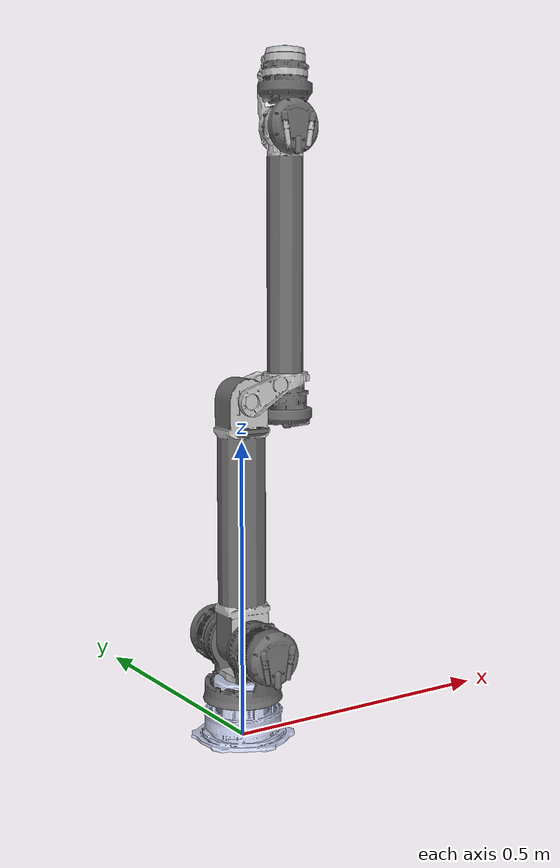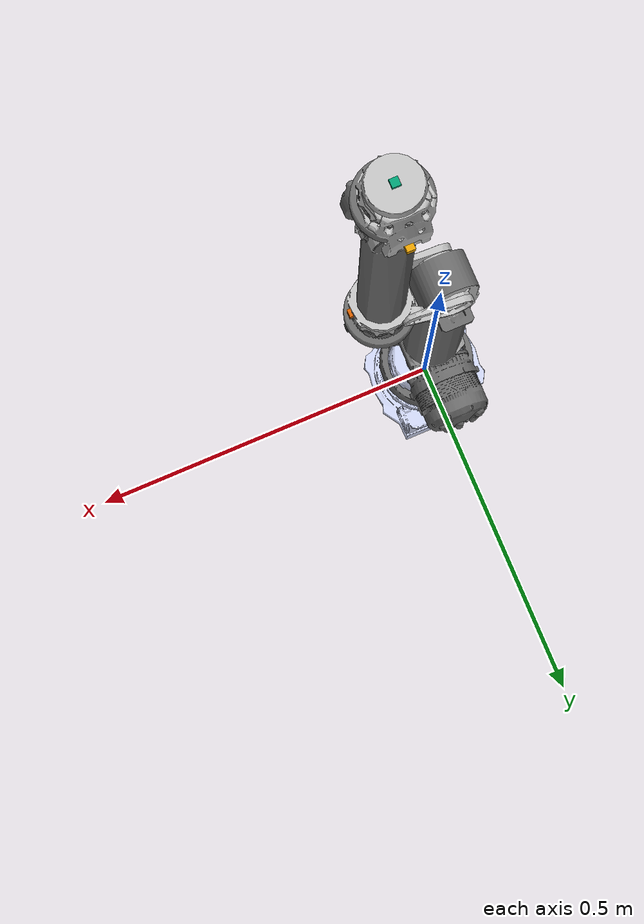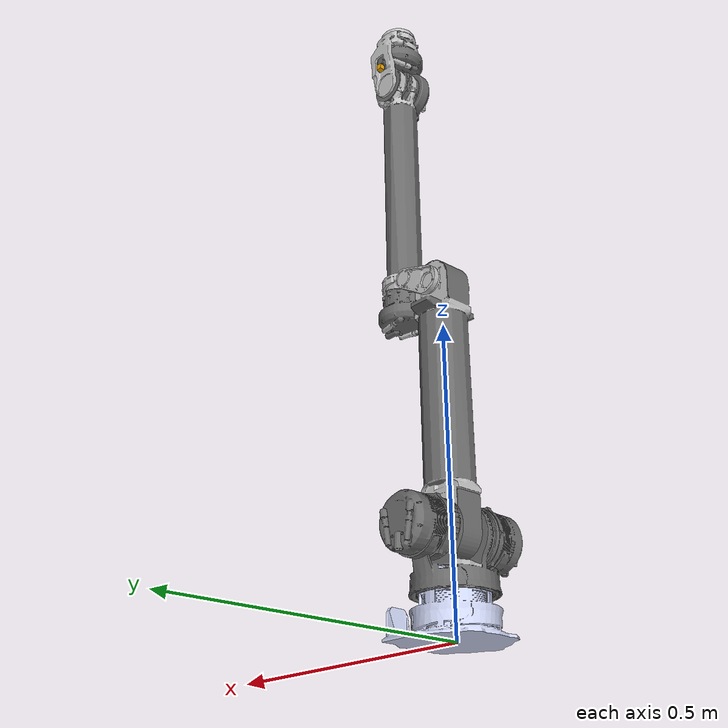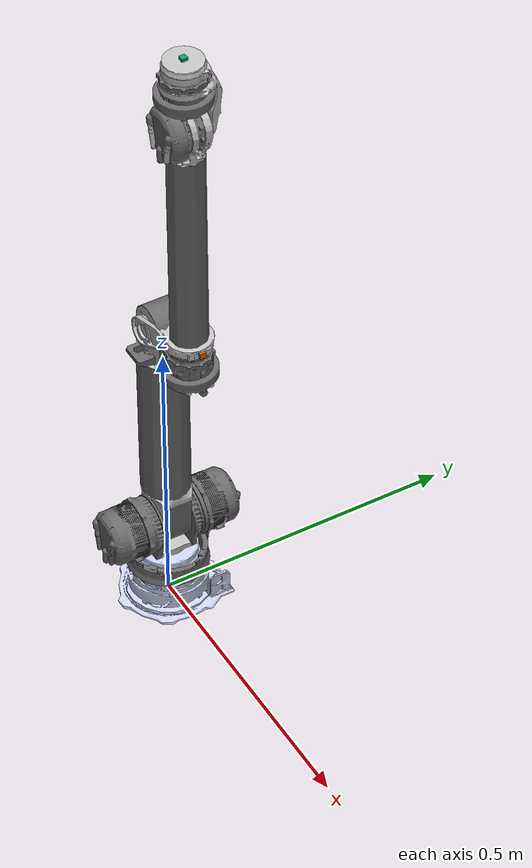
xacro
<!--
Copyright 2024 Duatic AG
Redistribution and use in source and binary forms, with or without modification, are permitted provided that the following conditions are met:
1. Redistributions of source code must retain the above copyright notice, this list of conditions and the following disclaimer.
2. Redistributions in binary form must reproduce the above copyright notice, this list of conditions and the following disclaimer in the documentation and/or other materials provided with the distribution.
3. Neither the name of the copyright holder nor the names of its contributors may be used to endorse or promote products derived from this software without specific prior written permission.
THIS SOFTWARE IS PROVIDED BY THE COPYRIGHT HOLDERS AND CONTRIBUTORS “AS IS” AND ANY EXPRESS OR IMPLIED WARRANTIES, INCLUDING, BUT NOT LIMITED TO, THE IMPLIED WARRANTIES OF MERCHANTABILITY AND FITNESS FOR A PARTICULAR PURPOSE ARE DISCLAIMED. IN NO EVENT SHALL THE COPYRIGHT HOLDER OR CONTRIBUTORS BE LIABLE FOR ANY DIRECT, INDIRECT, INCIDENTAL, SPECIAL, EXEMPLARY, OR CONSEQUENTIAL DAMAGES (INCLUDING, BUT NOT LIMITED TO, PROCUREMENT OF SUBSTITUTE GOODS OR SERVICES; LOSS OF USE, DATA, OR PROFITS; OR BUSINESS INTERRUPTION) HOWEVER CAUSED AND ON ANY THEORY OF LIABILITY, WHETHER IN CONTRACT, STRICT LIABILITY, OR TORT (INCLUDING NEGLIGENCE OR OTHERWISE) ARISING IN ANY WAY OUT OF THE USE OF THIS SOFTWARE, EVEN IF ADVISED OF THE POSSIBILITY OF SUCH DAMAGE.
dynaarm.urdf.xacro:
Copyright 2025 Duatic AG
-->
<robot name="dynaarm" xmlns:xacro="http://www.ros.org/wiki/xacro">

  <!--Example single arm setup-->
  <xacro:arg name="namespace" default="" />
  <xacro:arg name="tf_prefix" default="" />
  <xacro:arg name="dof" default="6" />
  <!-- collision: simple, complex -->
  <xacro:arg name="collision" default="simple" />
  <!-- real, mock, sim -->
  <xacro:arg name="mode" default="mock" />
  <!-- physical ethercat bus, only used for real -->
  <xacro:arg name="ethercat_bus" default="eth0" />
  <!-- Change to add covers to the arm -->
  <xacro:arg name="covers" default="false" />
  <xacro:arg name="version" default="baracuda12" />
  <!-- Path to ros2_control controller config file -->
  <xacro:arg name="controller_path" default="" />

  <xacro:include filename="$(find dynaarm_description)/urdf/dynaarm.urdf.xacro" />

  <link name="base_link" />

  <!-- create an instance of the dynaarm xacro macro and fix its base, move it up such that it doesn't intersect with the ground -->
  <xacro:dynaarm tf_prefix="$(arg tf_prefix)"
                parent_link="base_link"
                dof="$(arg dof)"
                collision="$(arg collision)"
                mode="$(arg mode)"
                ethercat_bus="$(arg ethercat_bus)"
                covers="$(arg covers)"
                version="$(arg version)">
    <origin xyz="0 0 0" rpy="0.0 0.0 0.0" />
  </xacro:dynaarm>

  <!-- Gazebo Ros2 Control -->
  <xacro:include filename="$(find duatic_control)/urdf/plugins.urdf.xacro" />
  <xacro:control namespace="$(arg namespace)">
    <remapping>cmd_vel:=cmd_vel</remapping> <!-- TODO: This line only exists, because otherwise the xacro doesn't compile -->
  </xacro:control>

</robot>

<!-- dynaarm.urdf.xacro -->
<robot name="dynaarm" xmlns:xacro="http://www.ros.org/wiki/xacro">

  <!-- DynaArm Macro-->

  <xacro:macro name="dynaarm"
    params="tf_prefix parent_link collision:='simple' dof mode ethercat_bus drive_order:='' start_in_freeze_mode:=false drive_parameter_folder:='' covers version *origin">

    <!-- Allow the user to pass the drive order file -->
    <xacro:property name="default_drive_order_file" value="$(find dynaarm_description)/urdf/common/${version}/drive_order.yaml" />
    <xacro:property name="drive_order_file" value="${default_drive_order_file if drive_order == '' else drive_order}" />
    <!-- Obtain the EtherCAT drive order (address order list) -->
    <xacro:property name="ethercat_addresses" value="${xacro.load_yaml(drive_order_file)}"/>

    <!--Allow the user to pass a custom folder for drive parameters-->
    <xacro:property name="default_drive_parameter_folder" value="$(find dynaarm_driver)/config/${version}" />
    <xacro:if value="${drive_parameter_folder == ''}">
      <xacro:property name="drive_parameter_folder_internal" value="${default_drive_parameter_folder}" />
    </xacro:if>
    <xacro:unless value="${drive_parameter_folder == ''}">
      <xacro:property name="drive_parameter_folder_internal" value="${drive_parameter_folder}" />
    </xacro:unless>
    <!-- Set ee_parent based on the specified DoF -->
    <xacro:property name="ee_parent" value="${base}" />

    <xacro:include filename="$(find dynaarm_description)/urdf/common/dynaarm_common.urdf.xacro" />
    <!-- Include the version specific information and also load the ethercat addresses from the drive file -->
    <xacro:include filename="$(find dynaarm_description)/urdf/common/${version}/dynaarm_parameters.urdf.xacro" />
    <xacro:include filename="$(find dynaarm_description)/urdf/common/dynaarm.ros2control.xacro" />

    <xacro:dynaarm_joint_fixed joint_name="${joint_base_name}"
      parent="${parent_link}"
      child="${base}">
      <xacro:insert_block name="origin" />
    </xacro:dynaarm_joint_fixed>

    <!-- DynaArm-->
    <xacro:dynaarm_main_body />
    <xacro:dynaarm_tool />

    <!--ros2control-->
    <xacro:dynaarm_ros2_control tf_prefix="${tf_prefix}"
                                ethercat_bus="${ethercat_bus}"
                                start_in_freeze_mode="${start_in_freeze_mode}"
                                drive_parameter_folder="${drive_parameter_folder_internal}"
                                drive_parameter_folder_default="${default_drive_parameter_folder}"
                                ethercat_addresses="${ethercat_addresses}"
                                mode="${mode}"/>
  </xacro:macro>

  <!-- DynaArm Main Body-->
  <xacro:macro name="dynaarm_main_body">

    <!-- dynaarm_base -->
    <xacro:dynaarm_baselink link_name="${base}" file_name="${base_mesh}">
      <base_inertia>
        <xacro:insert_block name="base_inertial" />
      </base_inertia>
      <base_collision>
        <xacro:insert_block name="base_collision" />
      </base_collision>
    </xacro:dynaarm_baselink>

    <!-- Base Covers-->
    <xacro:if value="${covers}">
      <xacro:dynaarm_link link_name="${base}_cover" file_name="${base_cover_mesh}">
        <link_inertia>
          <xacro:insert_block name="base_cover_inertial" />
        </link_inertia>
      </xacro:dynaarm_link>

      <xacro:dynaarm_joint_fixed joint_name="${base}_cover"
        parent="${base}"
        child="${base}_cover">
        <origin xyz="0.0 0.0 0.0" rpy="0.0 0.0 0.0" />
      </xacro:dynaarm_joint_fixed>
    </xacro:if>

    <!-- 1 DoF -->
    <xacro:if value="${dof >= 1}">

      <!-- dynaarm_SHOULDER -->
      <xacro:dynaarm_link_w_collision link_name="${link01}" file_name="${link01_mesh}">
        <link_inertia>
          <xacro:insert_block name="link01_inertial" />
        </link_inertia>
        <link_collision>
          <xacro:insert_block name="link01_collision" />
        </link_collision>
      </xacro:dynaarm_link_w_collision>

      <!-- shoulder_rotation -->
      <xacro:dynaarm_revolute_joint joint_name="${joint_1_name}"
        parent="${base}"
        child="${link01}"
        joint_axis_xyz="${joint_1_axis_xyz}"
        joint_lower_limit="${joint_1_lower_limit}"
        joint_upper_limit="${joint_1_upper_limit}"
        joint_limit_vel="${baboon_max_speed}"
        joint_limit_effort="${baboon_peak_torque}"
        joint_type="${joint_1_joint_type}">
        <origin xyz="${joint_1_origin_xyz}" rpy="${joint_1_origin_rpy}" />
      </xacro:dynaarm_revolute_joint>

      <!-- 1 Dof & Covers-->
      <xacro:if value="${covers}">
        <xacro:dynaarm_link link_name="${link01}_cover" file_name="${link01_cover_mesh}">
          <link_inertia>
            <xacro:insert_block name="link01_cover_inertial" />
          </link_inertia>
        </xacro:dynaarm_link>

        <xacro:dynaarm_joint_fixed joint_name="${link01}_cover" parent="${link01}"
          child="${link01}_cover">
          <origin xyz="0.0 0.0 0.0" rpy="0.0 0.0 0.0" />
        </xacro:dynaarm_joint_fixed>
      </xacro:if>

    </xacro:if>

    <!-- 2 DoF -->
    <xacro:if value="${dof >= 2}">

      <!-- dynaarm_UPPERARM -->
      <xacro:dynaarm_link_w_collision link_name="${link02}" file_name="${link02_mesh}">
        <link_inertia>
          <xacro:insert_block name="link02_inertial" />
        </link_inertia>
        <link_collision>
          <xacro:insert_block name="link02_collision" />
        </link_collision>
      </xacro:dynaarm_link_w_collision>

      <!-- shoulder_flexion -->
      <xacro:dynaarm_revolute_joint joint_name="${joint_2_name}"
        parent="${link01}"
        child="${link02}"
        joint_axis_xyz="${joint_2_axis_xyz}"
        joint_lower_limit="${joint_2_lower_limit}"
        joint_upper_limit="${joint_2_upper_limit}"
        joint_limit_vel="${baboon_max_speed}"
        joint_limit_effort="${baboon_peak_torque}"
        joint_type="${joint_2_joint_type}">
        <origin xyz="${joint_2_origin_xyz}" rpy="${joint_2_origin_rpy}" />
      </xacro:dynaarm_revolute_joint>

      <!-- 2 Dof & Covers-->
      <xacro:if value="${covers}">
        <xacro:dynaarm_link link_name="${link02}_cover" file_name="${link02_cover_mesh}">
          <link_inertia>
            <xacro:insert_block name="link02_cover_inertial" />
          </link_inertia>
        </xacro:dynaarm_link>

        <xacro:dynaarm_joint_fixed joint_name="${link02}_cover" parent="${link02}"
          child="${link02}_cover">
          <origin xyz="0.0 0.0 0.0" rpy="0.0 0.0 0.0" />
        </xacro:dynaarm_joint_fixed>
      </xacro:if>
    </xacro:if>

    <!-- 3 DoF -->
    <xacro:if value="${dof >= 3}">

      <!-- dynaarm_ELBOW -->
      <xacro:dynaarm_link_w_collision link_name="${link03}" file_name="${link03_mesh}">
        <link_inertia>
          <xacro:insert_block name="link03_inertial" />
        </link_inertia>
        <link_collision>
          <xacro:insert_block name="link03_collision" />
        </link_collision>
      </xacro:dynaarm_link_w_collision>

      <!-- elbow_flexion -->
      <xacro:dynaarm_revolute_joint joint_name="${joint_3_name}"
        parent="${link02}"
        child="${link03}"
        joint_axis_xyz="${joint_3_axis_xyz}"
        joint_lower_limit="${joint_3_lower_limit}"
        joint_upper_limit="${joint_3_upper_limit}"
        joint_limit_vel="${baboon_max_speed}"
        joint_limit_effort="${baboon_peak_torque}"
        joint_type="${joint_3_joint_type}">
        <origin xyz="${joint_3_origin_xyz}" rpy="${joint_3_origin_rpy}" />
      </xacro:dynaarm_revolute_joint>

      <!--dynaarm_ELBOW_CAMERA_BASE-->
      <xacro:if value="${version == 'baracuda12'}">

        <!-- Virtual elbow camera link -->
        <xacro:virtual_link link_name="${link03_cam}" />

        <!-- Camera fixed on elbow -->
        <xacro:dynaarm_joint_fixed joint_name="${joint_3_cam_name}"
          parent="${link03}"
          child="${link03_cam}">
          <origin xyz="${joint_3_cam_origin_xyz}" rpy="${joint_3_cam_origin_rpy}" />
        </xacro:dynaarm_joint_fixed>
      </xacro:if>

      <!-- 3 Dof & Covers-->
      <xacro:if value="${covers}">
        <xacro:dynaarm_link link_name="${link03}_cover" file_name="${link03_cover_mesh}">
          <link_inertia>
            <xacro:insert_block name="link03_cover_inertial" />
          </link_inertia>
        </xacro:dynaarm_link>

        <xacro:dynaarm_joint_fixed joint_name="${link03}_cover" parent="${link03}"
          child="${link03}_cover">
          <origin xyz="0.0 0.0 0.0" rpy="0.0 0.0 0.0" />
        </xacro:dynaarm_joint_fixed>
      </xacro:if>
    </xacro:if>

    <!-- 4 DoF -->
    <xacro:if value="${dof >= 4}">

      <xacro:if value="${version == 'arowana4'}">
        <!-- dynaarm_FOREARM -->
        <xacro:dynaarm_link link_name="${link04}" file_name="${link04_mesh}">
          <link_inertia>
            <xacro:insert_block name="link04_inertial" />
          </link_inertia>
        </xacro:dynaarm_link>
      </xacro:if>

      <xacro:if value="${version == 'baracuda12'}">
        <!-- dynaarm_FOREARM -->
        <xacro:dynaarm_link_w_collision link_name="${link04}" file_name="${link04_mesh}">
          <link_inertia>
            <xacro:insert_block name="link04_inertial" />
          </link_inertia>

          <link_collision>
            <xacro:insert_block name="link04_collision" />
          </link_collision>
        </xacro:dynaarm_link_w_collision>
      </xacro:if>

      <!-- forearm_rotation -->
      <xacro:dynaarm_revolute_joint joint_name="${joint_4_name}" parent="${link03}"
        child="${link04}"
        joint_axis_xyz="${joint_4_axis_xyz}"
        joint_lower_limit="${joint_4_lower_limit}"
        joint_upper_limit="${joint_4_upper_limit}"
        joint_limit_vel="${baboon_max_speed}"
        joint_limit_effort="${baboon_peak_torque}"
        joint_type="${joint_4_joint_type}">
        <origin xyz="${joint_4_origin_xyz}" rpy="${joint_4_origin_rpy}" />
      </xacro:dynaarm_revolute_joint>

      <!-- 4 Dof & Covers-->
      <xacro:if value="${covers}">
        <xacro:dynaarm_link link_name="${link04}_cover" file_name="${link04_cover_mesh}">
          <link_inertia>
            <xacro:insert_block name="link04_cover_inertial" />
          </link_inertia>
        </xacro:dynaarm_link>

        <xacro:dynaarm_joint_fixed joint_name="${link04}_cover" parent="${link04}"
          child="${link04}_cover">
          <origin xyz="0.0 0.0 0.0" rpy="0.0 0.0 0.0" />
        </xacro:dynaarm_joint_fixed>
      </xacro:if>
    </xacro:if>

    <!-- 5 DoF -->
    <xacro:if value="${dof >= 5}">

      <!-- WRIST_1 -->
      <xacro:dynaarm_link_w_collision link_name="${link05}" file_name="${link05_mesh}">
        <link_inertia>
          <xacro:insert_block name="link05_inertial" />
        </link_inertia>
        <link_collision>
          <xacro:insert_block name="link05_collision" />
        </link_collision>
      </xacro:dynaarm_link_w_collision>

      <!-- wrist_flexion -->
      <xacro:dynaarm_revolute_joint joint_name="${joint_5_name}" parent="${link04}"
        child="${link05}"
        joint_axis_xyz="${joint_5_axis_xyz}"
        joint_lower_limit="${joint_5_lower_limit}"
        joint_upper_limit="${joint_5_upper_limit}"
        joint_limit_vel="${baboon_max_speed}"
        joint_limit_effort="${baboon_peak_torque}"
        joint_type="${joint_5_joint_type}">
        <origin xyz="${joint_5_origin_xyz}" rpy="${joint_5_origin_rpy}" />
      </xacro:dynaarm_revolute_joint>

      <xacro:if value="${version == 'baracuda12'}">
        <!-- Virtual wrist camera link -->
        <xacro:virtual_link link_name="${link05_cam}" />

        <!-- Camera fixed on wrist1 -->
        <xacro:dynaarm_joint_fixed joint_name="${joint_5_cam_name}"
          parent="${link05}"
          child="${link05_cam}">
          <origin xyz="${joint_5_cam_origin_xyz}" rpy="${joint_5_cam_origin_rpy}" />
        </xacro:dynaarm_joint_fixed>
      </xacro:if>

      <!-- 5 Dof & Covers-->
      <xacro:if value="${covers}">
        <xacro:dynaarm_link link_name="${link05}_cover" file_name="${link05_cover_mesh}">
          <link_inertia>
            <xacro:insert_block name="link05_cover_inertial" />
          </link_inertia>
        </xacro:dynaarm_link>

        <xacro:dynaarm_joint_fixed joint_name="${link05}_cover" parent="${link05}"
          child="${link05}_cover">
          <origin xyz="0.0 0.0 0.0" rpy="0.0 0.0 0.0" />
        </xacro:dynaarm_joint_fixed>
      </xacro:if>
    </xacro:if>

    <!-- 6 DoF -->
    <xacro:if value="${dof >= 6}">

      <xacro:if value="${version == 'arowana4'}">
        <!-- WRIST_2 -->
        <xacro:dynaarm_link link_name="${link06}" file_name="${link06_mesh}">
          <link_inertia>
            <xacro:insert_block name="link06_inertial" />
          </link_inertia>
        </xacro:dynaarm_link>
      </xacro:if>

      <xacro:if value="${version == 'baracuda12'}">
        <!-- WRIST_2 -->
        <xacro:dynaarm_link_w_collision link_name="${link06}" file_name="${link06_mesh}">
          <link_inertia>
            <xacro:insert_block name="link06_inertial" />
          </link_inertia>
          <link_collision>
            <xacro:insert_block name="link06_collision" />
          </link_collision>
        </xacro:dynaarm_link_w_collision>
      </xacro:if>

      <!-- wrist_rotation -->
      <xacro:dynaarm_revolute_joint joint_name="${joint_6_name}" parent="${link05}"
        child="${link06}"
        joint_axis_xyz="${joint_6_axis_xyz}"
        joint_lower_limit="${joint_6_lower_limit}"
        joint_upper_limit="${joint_6_upper_limit}"
        joint_limit_vel="${baboon_max_speed}"
        joint_limit_effort="${baboon_peak_torque}"
        joint_type="${joint_6_joint_type}">
        <origin xyz="${joint_6_origin_xyz}" rpy="${joint_6_origin_rpy}" />
      </xacro:dynaarm_revolute_joint>

    </xacro:if>

  </xacro:macro>

  <!-- DynaArm Tool-->
  <xacro:macro name="dynaarm_tool">
      <xacro:virtual_link link_name="${end_effector}" />
      <xacro:dynaarm_joint_fixed joint_name="${joint_ee_name}"
          parent="${ee_parent}"
          child="${end_effector}">
          <origin xyz="${joint_ee_origin_xyz}" rpy="${joint_ee_origin_rpy}" />
      </xacro:dynaarm_joint_fixed>
  </xacro:macro>

</robot>

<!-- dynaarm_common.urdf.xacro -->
<robot xmlns:xacro="http://www.ros.org/wiki/xacro">

    <!-- DynaArm Base Link Macro -->
    <xacro:macro name="dynaarm_baselink"
        params="link_name file_name **base_inertia **base_collision">
        <link name="${link_name}">
            <visual>
                <geometry>
                    <mesh
                        filename="file://$(find dynaarm_description)/meshes/${version}/${file_name}"
                        scale="1.0 1.0 1.0" />
                </geometry>
                <material name="carbon_fiber">
                    <color rgba="0.792156862745098 0.819607843137255 0.933333333333333 1" />
                </material>
            </visual>
            <xacro:insert_block name="base_collision" />
            <xacro:insert_block name="base_inertia" />
        </link>
    </xacro:macro>

    <!-- DynaArm Link Macro -->
    <xacro:macro name="dynaarm_link"
        params="link_name file_name **link_inertia">
        <link name="${link_name}">
            <visual>
                <geometry>
                    <mesh
                        filename="file://$(find dynaarm_description)/meshes/${version}/${file_name}"
                        scale="1.0 1.0 1.0" />
                </geometry>
            </visual>
            <xacro:insert_block name="link_inertia" />
        </link>
    </xacro:macro>

    <!-- DynaArm Link With Collision Macro -->
    <xacro:macro name="dynaarm_link_w_collision"
        params="link_name file_name **link_inertia **link_collision">
        <link name="${link_name}">
            <visual>
                <geometry>
                    <mesh
                        filename="file://$(find dynaarm_description)/meshes/${version}/${file_name}"
                        scale="1.0 1.0 1.0" />
                </geometry>
            </visual>
            <xacro:insert_block name="link_inertia" />
            <xacro:insert_block name="link_collision" />
        </link>
    </xacro:macro>

    <!-- DynaArm Virtual Link Macro -->
    <xacro:macro name="virtual_link" params="link_name mass:=0.001 ixx:=0.0000001 iyy:=0.0000001 izz:=0.0000001">
        <link name="${link_name}">
            <visual>
                <origin xyz="0 0 0" rpy="0 0 0" />
                <geometry>
                    <box size="0.01 0.01 0.01" />
                </geometry>
            </visual>
            <inertial>
                <origin xyz="0.0 0.0 0.0" rpy="0 0 0" />
                <mass value="${mass}" />
                <inertia ixx="${ixx}" ixy="0.0" iyy="${iyy}" ixz="0.0" iyz="0.0" izz="${izz}" />
            </inertial>
            <collision>
                <origin xyz="0 0 0" rpy="0 0 0" />
                <geometry>
                    <box size="0.01 0.01 0.01" />
                </geometry>
            </collision>
        </link>
        <!-- Gazebo customization -->
        <!-- Contact model -->
        <xacro:property name="kp" value="10000.0" />
        <xacro:property name="kd" value="10.0" />
        <xacro:property name="mu" value="0.8" />
        <gazebo reference="${link_name}">
            <kp>${kp}</kp>
            <kd>${kd}</kd>
            <mu1>${mu}</mu1>
            <mu2>${mu}</mu2>
        </gazebo>
    </xacro:macro>

    <!-- DynaArm Revolute Joint Macro -->
    <xacro:macro name="dynaarm_revolute_joint"
        params="joint_name
                parent
                child
                joint_axis_xyz
                joint_lower_limit
                joint_upper_limit
                joint_limit_vel
                joint_limit_effort
                joint_type
                *origin">
        <joint name="${joint_name}" type="${joint_type}">
            <parent link="${parent}" />
            <child link="${child}" />
            <axis xyz="${joint_axis_xyz}" />
            <limit effort="${joint_limit_effort}" command_effort="${joint_limit_effort}"
                current="10" gear_velocity="${joint_limit_vel}" velocity="${joint_limit_vel}"
                lower="${joint_lower_limit}" upper="${joint_upper_limit}" />
            <!-- limit effort also defines torque limit and freeze controller gains -->
            <xacro:insert_block name="origin" />
        </joint>
    </xacro:macro>

    <!-- DynaArm Fixed Joint Macro -->
    <xacro:macro name="dynaarm_joint_fixed"
        params="joint_name parent child *origin">
        <joint name="${joint_name}" type="fixed">
            <parent link="${parent}" />
            <child link="${child}" />
            <limit effort="2000" velocity="0" lower="0" upper="0" />
            <xacro:insert_block name="origin" />
        </joint>
    </xacro:macro>

</robot>

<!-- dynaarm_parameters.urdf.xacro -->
<robot xmlns:xacro="http://www.ros.org/wiki/xacro">
  <xacro:property name="arm_version_name" value="baracuda12"/>

  <xacro:property name="J_PI" value="3.14159265359" />

  <xacro:property name="baboon_peak_torque" value="40" />
  <xacro:property name="baboon_max_speed" value="4" />

  <xacro:property name="mm2_to_m2" value="0.000001" />
  <xacro:property name="mm_to_m" value="0.001" />

  <!-- Links -->
  <xacro:property name="base" value="${tf_prefix}base" />
  <xacro:property name="link01" value="${tf_prefix}shoulder" />
  <xacro:property name="link02" value="${tf_prefix}upperarm" />
  <xacro:property name="link03" value="${tf_prefix}elbow" />
  <xacro:property name="link03_cam" value="${tf_prefix}elbow_camera_mount" />
  <xacro:property name="link04" value="${tf_prefix}forearm" />
  <xacro:property name="link05" value="${tf_prefix}wrist_1" />
  <xacro:property name="link05_cam" value="${tf_prefix}wrist_1_camera_mount" />
  <xacro:property name="link06" value="${tf_prefix}wrist_2" />
  <xacro:property name="end_effector" value="${tf_prefix}flange" />

  <!-- Meshes -->
  <xacro:if value="${covers}">
    <xacro:property name="base_mesh" value="base_mesh.dae" />
    <xacro:property name="link01_mesh" value="shoulder_mesh.dae" />
    <xacro:property name="link02_mesh" value="upperarm_mesh.dae" />
    <xacro:property name="link03_mesh" value="elbow_mesh.dae" />
    <xacro:property name="link04_mesh" value="forearm_mesh.dae" />
    <xacro:property name="link05_mesh" value="wrist1_mesh.dae" />
    <xacro:property name="link06_mesh" value="wrist2_mesh.dae" />

    <xacro:property name="base_cover_mesh" value="base_mesh.dae" />
    <xacro:property name="link01_cover_mesh" value="shoulder_mesh.dae" />
    <xacro:property name="link02_cover_mesh" value="upperarm_mesh.dae" />
    <xacro:property name="link03_cover_mesh" value="elbow_mesh.dae" />
    <xacro:property name="link04_cover_mesh" value="forearm_mesh.dae" />
    <xacro:property name="link05_cover_mesh" value="wrist1_mesh.dae" />
    <xacro:property name="link06_cover_mesh" value="wrist2_mesh.dae" />
  </xacro:if>

  <xacro:unless value="${covers}">
    <xacro:property name="base_mesh" value="base_mesh.dae" />
    <xacro:property name="link01_mesh" value="shoulder_mesh.dae" />
    <xacro:property name="link02_mesh" value="upperarm_mesh.dae" />
    <xacro:property name="link03_mesh" value="elbow_mesh.dae" />
    <xacro:property name="link04_mesh" value="forearm_mesh.dae" />
    <xacro:property name="link05_mesh" value="wrist1_mesh.dae" />
    <xacro:property name="link06_mesh" value="wrist2_mesh.dae" />
  </xacro:unless>

  <!-- Joint properties -->
  <xacro:property name="joint_base_name" value="${tf_prefix}joint_base" />
  <xacro:property name="joint_base_joint_type" value="revolute" />
  <xacro:property name="joint_base_axis_xyz" value="0 0 0" />
  <xacro:property name="joint_base_origin_xyz" value="0 0 0" />
  <xacro:property name="joint_base_origin_rpy" value="0 0 0" />

  <xacro:property name="joint_1_name" value="${tf_prefix}shoulder_rotation" />
  <xacro:property name="joint_1_joint_type" value="revolute" />
  <xacro:property name="joint_1_axis_xyz" value="0 0 1" />
  <xacro:property name="joint_1_origin_xyz" value="0 0 0.1105" />
  <xacro:property name="joint_1_origin_rpy" value="0 0 0" />
  <xacro:property name="joint_1_lower_limit" value="${-J_PI - J_PI/2 + 0.4}" />
  <xacro:property name="joint_1_upper_limit" value="${J_PI + J_PI/2 - 0.4}" />

  <xacro:property name="joint_2_name" value="${tf_prefix}shoulder_flexion" />
  <xacro:property name="joint_2_joint_type" value="revolute" />
  <xacro:property name="joint_2_axis_xyz" value="0 0 1" />
  <xacro:property name="joint_2_origin_xyz" value="0 0 0.047" />
  <xacro:property name="joint_2_origin_rpy" value="${J_PI/2} ${-J_PI/2} 0" />
  <xacro:property name="joint_2_lower_limit" value="${-J_PI/2 - 0.15}" />
  <xacro:property name="joint_2_upper_limit" value="${J_PI/2 + 0.15}" />

  <xacro:property name="joint_3_name" value="${tf_prefix}elbow_flexion" />
  <xacro:property name="joint_3_joint_type" value="revolute" />
  <xacro:property name="joint_3_axis_xyz" value="0 0 1" />
  <xacro:property name="joint_3_origin_xyz" value="0.4127 0 0" />
  <xacro:property name="joint_3_origin_rpy" value="0 0 0" />
  <xacro:property name="joint_3_lower_limit" value="0.00" />
  <xacro:property name="joint_3_upper_limit" value="${J_PI - 0.05}" />

  <xacro:property name="joint_3_cam_name" value="${tf_prefix}elbow_camera" />
  <xacro:property name="joint_3_cam_joint_type" value="fixed" />
  <xacro:property name="joint_3_cam_axis_xyz" value="0 0 0" />
  <xacro:property name="joint_3_cam_origin_xyz" value="0.0345 -0.1235 0" />
  <xacro:property name="joint_3_cam_origin_rpy" value="0.0 0.0 0.0" />

  <xacro:property name="joint_4_name" value="${tf_prefix}forearm_rotation" />
  <xacro:property name="joint_4_joint_type" value="revolute" />
  <xacro:property name="joint_4_axis_xyz" value="0 0 1" />
  <xacro:property name="joint_4_origin_xyz" value="0.0262 -0.0855 0" />
  <xacro:property name="joint_4_origin_rpy" value="${J_PI/2} ${J_PI/2} ${J_PI/2}" />
  <xacro:property name="joint_4_lower_limit" value="${-J_PI - J_PI/2}" />
  <xacro:property name="joint_4_upper_limit" value="${J_PI + J_PI/2}" />

  <xacro:property name="joint_5_name" value="${tf_prefix}wrist_flexion" />
  <xacro:property name="joint_5_joint_type" value="revolute" />
  <xacro:property name="joint_5_axis_xyz" value="0 0 1" />
  <xacro:property name="joint_5_origin_xyz" value="0.0295 0 0.4207" />
  <xacro:property name="joint_5_origin_rpy" value="0 ${-J_PI/2} 0" />
  <xacro:property name="joint_5_lower_limit" value="${-J_PI/2 -0.25}" />
  <xacro:property name="joint_5_upper_limit" value="${J_PI/2 + 0.25}" />

  <xacro:property name="joint_5_cam_name" value="${tf_prefix}wrist_flexion_camera" />
  <xacro:property name="joint_5_cam_joint_type" value="fixed" />
  <xacro:property name="joint_5_cam_axis_xyz" value="0 0 0" />
  <xacro:property name="joint_5_cam_origin_xyz" value="0.032 0 -0.017" />
  <xacro:property name="joint_5_cam_origin_rpy" value="0.0 0.0 0.0" />

  <xacro:property name="joint_6_name" value="${tf_prefix}wrist_rotation" />
  <xacro:property name="joint_6_joint_type" value="revolute" />
  <xacro:property name="joint_6_axis_xyz" value="0 0 1" />
  <xacro:property name="joint_6_origin_xyz" value="0.117 0.0 0.0295" />
  <xacro:property name="joint_6_origin_rpy" value="${-J_PI/2} ${J_PI/2} ${-J_PI/2}" />
  <xacro:property name="joint_6_lower_limit" value="${-J_PI - J_PI/2}" />
  <xacro:property name="joint_6_upper_limit" value="${J_PI + J_PI/2}" />

  <xacro:property name="joint_ee_name" value="${tf_prefix}flange_fix_joint" />
  <xacro:property name="joint_ee_xyz" value="0.0 0.0 0.009" />
  <xacro:property name="joint_ee_origin_xyz" value="0.0 0.0 0.009" />
  <xacro:property name="joint_ee_origin_4dof_xyz" value="0.0 0.0 0.009" />
  <xacro:property name="joint_ee_origin_rpy" value="0.0 0.0 ${J_PI/2}" />
  <xacro:property name="joint_ee_origin_4dof_rpy" value="0.0 0.0 ${J_PI/2}" />
  <xacro:property name="joint_ee_rpy" value="0 0 0" />

  <!-- Base Robot -->
  <xacro:property name="base_inertial">
    <inertial>
      <mass value="1.94219788" />
      <origin
        xyz="0.00243205 0.00250861 0.05299306"
        rpy="0 0 0" />
      <inertia ixx="0.00434815" iyy="0.00446542"
        izz="0.00446174" ixy="0.00028867"
        ixz="-0.00015925" iyz="-0.00015771" />
    </inertial>
  </xacro:property>

  <!-- Shoulder -->
  <xacro:property name="link01_inertial">
    <inertial>
      <mass value="2.825469" />
      <origin xyz="0.000012 0.000480 0.039513" rpy="0 0 0" />
      <inertia ixx="0.013069" iyy="0.004793"
        izz="0.012242" ixy="0.000033"
        ixz="-0.000002" iyz="-0.000046" />
    </inertial>
  </xacro:property>

  <!-- Upper Arm -->
  <xacro:property name="link02_inertial">
    <inertial>
      <mass value="2.12040464" />
      <origin xyz="0.20391301 -0.00000528 -0.00015224"
        rpy="0 0 0" />
      <inertia ixx="0.00155499" iyy="0.05067934"
        izz="0.0507131" ixy="0.00000098"
        ixz="0.00004108" iyz="-0.00000143" />
    </inertial>
  </xacro:property>

  <!-- Elbow -->
  <xacro:property name="link03_inertial">
    <inertial>
      <mass value="0.82320237" />
      <origin xyz="0.00383866 -0.07802638 -0.00026928" rpy="0 0 0" />
      <inertia ixx="0.00107419" iyy="0.00087121"
        izz="0.00113856" ixy="0.00004166"
        ixz="-0.00000398" iyz="-0.0000119" />
    </inertial>
  </xacro:property>

  <!-- Camera Mounting Point 1 -->
  <xacro:property name="link03_cam_inertial">
    <inertial>
      <mass value="1e-6" />

      <origin xyz="0.0 0.0 0.0" rpy="0 0 0" />
      <inertia ixx="1e-6" iyy="1e-6"
        izz="1e-6" ixy="1e-6"
        ixz="1e-6" iyz="1e-6" />
    </inertial>
  </xacro:property>

  <!-- Forearm -->
  <xacro:property name="link04_inertial">
    <inertial>
      <!-- The mass here is 100g more than the value in CAD, but through testing we found out that freedrive works better with the increased value (09.12.25 Antonis & Marc)-->
      <mass value="1.337246" />
      <origin xyz="-0.001568 0.000046 0.292163" rpy="0 0 0" />
      <inertia ixx="0.033872" iyy="0.033868"
        izz="0.001041" ixy="0.000002"
        ixz="-0.000276" iyz="0.000018" />
    </inertial>
  </xacro:property>

  <!-- wrist_1 -->
  <xacro:property name="link05_inertial">
    <inertial>
      <mass value="1.15007482" />
      <origin xyz="0.07972553 -0.00005038 0.02334747" rpy="0 0 0" />
      <inertia ixx="0.00065953" iyy="0.00088282"
        izz="0.00078106" ixy="0.00000076"
        ixz="0.00011795" iyz="-0.00000079" />
    </inertial>
  </xacro:property>

  <!-- Camera Mounting Point 2 -->
  <xacro:property name="link05_cam_inertial">
    <inertial>
      <mass value="1e-6" />
      <origin xyz="0.0 0.0 0.0" rpy="0 0 0" />
      <inertia ixx="1e-6" iyy="1e-6"
        izz="1e-6" ixy="1e-6"
        ixz="1e-6" iyz="1e-6" />
    </inertial>
  </xacro:property>

  <!-- Wrist 2 -->
  <xacro:property name="link06_inertial">
    <inertial>
      <mass value="0.0478406" />
      <origin xyz="0.00045711 0.00000557 0.00344945" rpy="0 0 0" />
      <inertia ixx="0.00001366" iyy="0.00001419"
        izz="0.00002702" ixy="0"
        ixz="0.00000008" iyz="0" />
    </inertial>
  </xacro:property>

  <!-- Covers -->
  <xacro:property name="base_cover_inertial">
    <inertial>
      <mass value="0.098" />
      <origin xyz="${0.0*mm_to_m} ${0.0*mm_to_m} ${-60.7*mm_to_m}" rpy="0 0 0" />
      <inertia ixx="${0.000349}" iyy="${0.000338}" izz="${0.000649}" ixy="${0.000000018}"
        ixz="${-0.000000001}" iyz="${-0.000000002}" />
    </inertial>
  </xacro:property>

  <xacro:property name="link01_cover_inertial">
    <inertial>
      <mass value="0.135" />
      <origin xyz="${-0.039*mm_to_m} ${-0.015*mm_to_m} ${-31.709*mm_to_m}" rpy="0 0 0" />
      <inertia ixx="${0.00068}" iyy="${0.000517}" izz="${0.000646}" ixy="${-0.000000318}"
        ixz="${-0.000000206}" iyz="${-0.000000074}" />
    </inertial>
  </xacro:property>

  <xacro:property name="link02_cover_inertial">
    <inertial>
      <mass value="0.743" />
      <origin xyz="${167.97*mm_to_m} ${0.081*mm_to_m} ${0.0*mm_to_m}" rpy="0 0 0" />
      <inertia ixx="${0.0054}" iyy="${0.025}" izz="${0.0293}" ixy="${-0.000004814}"
        ixz="${-0.000000101}" iyz="${0.000000134}" />
    </inertial>
  </xacro:property>

  <xacro:property name="link03_cover_inertial">
    <inertial>
      <mass value="0.383" />
      <origin xyz="${37.807*mm_to_m} ${-101.52*mm_to_m} ${0.184*mm_to_m}" rpy="0 0 0" />
      <inertia ixx="${0.00139}" iyy="${0.00176}" izz="${0.00225}" ixy="${-0.000150269}"
        ixz="${0.000002221}" iyz="${-0.000003993}" />
    </inertial>
  </xacro:property>

  <xacro:property name="link04_cover_inertial">
    <inertial>
      <mass value="0.158" />
      <origin xyz="${-9.28*mm_to_m} ${-0.008*mm_to_m} ${377.34*mm_to_m}" rpy="0 0 0" />
      <inertia ixx="${0.000594}" iyy="${0.000846}" izz="${0.000485}" ixy="${-0.000000100}"
        ixz="${-0.000057116}" iyz="${0.000000128}" />
    </inertial>
  </xacro:property>

  <xacro:property name="link05_cover_inertial">
    <inertial>
      <mass value="0.121" />
      <origin xyz="${54.24*mm_to_m} ${-0.0012*mm_to_m} ${-0.0069*mm_to_m}" rpy="0 0 0" />
      <inertia ixx="${0.0003}" iyy="${0.00049}" izz="${0.00053}" ixy="${-0.000000004}"
        ixz="${0.0}" iyz="${-0.000000043}" />
    </inertial>
  </xacro:property>

 <xacro:if value="${collision == 'simple'}">
    <!-- Collision properties -->
    <xacro:property name="base_collision">
        <collision>
            <geometry>
                <cylinder length='0.1' radius='0.05'/>
            </geometry>
            <origin xyz='0 0 0.05' rpy='0 0 0'/>
        </collision>
    </xacro:property>

    <xacro:property name="link01_collision">
          <collision>
              <geometry>
                  <cylinder length='0.25' radius='0.06'/>
              </geometry>
              <origin xyz='0 0 0.05' rpy='${J_PI/2} 0 0'/>
          </collision>
    </xacro:property>

    <xacro:property name="link02_collision">
          <collision>
              <geometry>
                  <cylinder length='0.4' radius='0.05'/>
              </geometry>
              <origin xyz='0.15 0 0' rpy='0 ${J_PI/2} 0'/>
          </collision>
    </xacro:property>

    <xacro:property name="link03_collision">
      <collision>
          <geometry>
              <cylinder length='0.2' radius='0.065'/>
          </geometry>
          <origin xyz='-0.01 -0.05 0' rpy='${J_PI/2} 0 0'/>
      </collision>
    </xacro:property>

    <xacro:property name="link04_collision">
      <collision>
          <geometry>
              <cylinder length='0.4' radius='0.04'/>
          </geometry>
          <origin xyz='0 0 0.2' rpy='0 0 0'/>
      </collision>
    </xacro:property>

    <xacro:property name="link05_collision">
      <collision>
          <geometry>
              <cylinder length='0.125' radius='0.05'/>
          </geometry>
          <origin xyz='0 0 0.025' rpy='0 0 ${J_PI/2}'/>
      </collision>
    </xacro:property>

    <xacro:property name="link06_collision">
      <collision>
          <geometry>
              <cylinder length='0.09' radius='0.052'/>
          </geometry>
          <origin xyz='0.005 0 -0.035' rpy='0 0 0'/>
      </collision>
    </xacro:property>

  </xacro:if>

  <xacro:if value="${collision == 'complex'}">
    <!-- Collision properties -->
    <xacro:property name="base_collision">
      <collision>
        <origin xyz="0 0 0" rpy="0 0 0" />
        <geometry>
          <mesh
            filename="file://$(find dynaarm_description)/meshes/baracuda12/collision_meshes/base_collision_mesh.stl"
            scale="1 1 1" />
        </geometry>
      </collision>
    </xacro:property>

    <xacro:property name="link01_collision">
      <collision>
        <origin xyz="0 0 0" rpy="0 0 0" />
        <geometry>
          <mesh
            filename="file://$(find dynaarm_description)/meshes/baracuda12/collision_meshes/shoulder_collision_mesh.stl"
            scale="1 1 1" />
        </geometry>
      </collision>
    </xacro:property>

    <xacro:property name="link02_collision">
      <collision>
        <origin xyz="0 0 0" rpy="0 0 0" />
        <geometry>
          <mesh
            filename="file://$(find dynaarm_description)/meshes/baracuda12/collision_meshes/upperarm_collision_mesh.stl"
            scale="1 1 1" />
        </geometry>
      </collision>
    </xacro:property>

    <xacro:property name="link03_collision">
      <collision>
        <origin xyz="0 0 0" rpy="0 0 0" />
        <geometry>
          <mesh
            filename="file://$(find dynaarm_description)/meshes/baracuda12/collision_meshes/elbow_collision_mesh.stl"
            scale="1 1 1" />
        </geometry>
      </collision>
    </xacro:property>

    <xacro:property name="link04_collision">
      <collision>
        <origin xyz="0 0 0" rpy="0 0 0" />
        <geometry>
          <mesh
            filename="file://$(find dynaarm_description)/meshes/baracuda12/collision_meshes/forearm_collision_mesh.stl"
            scale="1 1 1" />
        </geometry>
      </collision>
    </xacro:property>

    <xacro:property name="link05_collision">
      <collision>
        <origin xyz="0 0 0" rpy="0 0 0" />
        <geometry>
          <mesh
            filename="file://$(find dynaarm_description)/meshes/baracuda12/collision_meshes/wrist1_collision_mesh.stl"
            scale="1 1 1" />
        </geometry>
      </collision>
    </xacro:property>

    <xacro:property name="link06_collision">
      <collision>
        <origin xyz="0 0 0" rpy="0 0 0" />
        <geometry>
          <mesh
            filename="file://$(find dynaarm_description)/meshes/baracuda12/collision_meshes/wrist2_collision_mesh.stl"
            scale="1 1 1" />
        </geometry>
      </collision>
    </xacro:property>
  </xacro:if>

  <!-- set the ee_parent relative to the DoF -->
  <xacro:property name="ee_parent" value="${base}" />

  <xacro:if value="${dof >= 1}">
    <xacro:property name="ee_parent" value="${link01}" />
  </xacro:if>

  <xacro:if value="${dof >= 2}">
    <xacro:property name="ee_parent" value="${link02}" />
  </xacro:if>

  <xacro:if value="${dof >= 3}">
    <xacro:property name="ee_parent" value="${link03}" />
  </xacro:if>

  <xacro:if value="${dof >= 4}">
    <xacro:property name="ee_parent" value="${link04}" />
  </xacro:if>

  <xacro:if value="${dof >= 5}">
    <xacro:property name="ee_parent" value="${link05}" />
  </xacro:if>

  <xacro:if value="${dof >= 6}">
    <xacro:property name="ee_parent" value="${link06}" />
  </xacro:if>

</robot>
